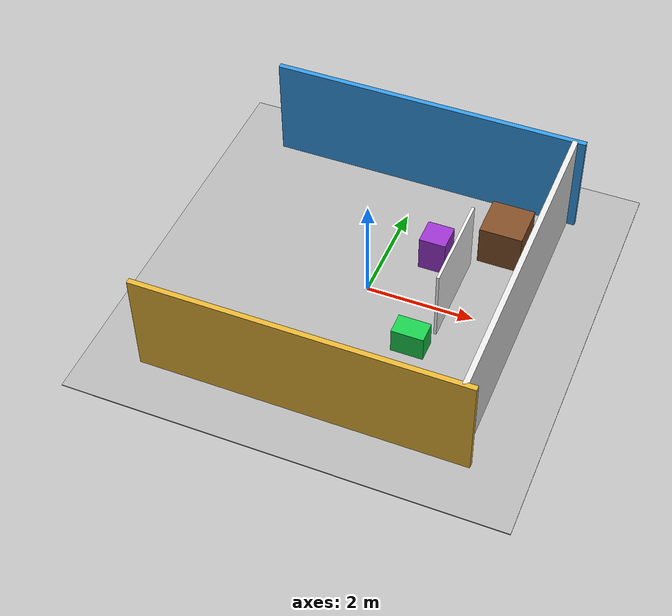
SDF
<?xml version="1.0" ?>
<sdf version="1.7">
  <world name="simple_arm_test_world">

    <gravity>0 0 -9.8</gravity>

    <include>
      <uri>model://sun</uri>
    </include>

    <!-- Floor -->
    <model name="floor_box">
      <static>true</static>
      <pose>0 0 -0.01 0 0 0</pose>
      <link name="link">
        <collision name="collision">
          <geometry>
            <box>
              <size>8 8 0.02</size>
            </box>
          </geometry>
        </collision>
        <visual name="visual">
          <geometry>
            <box>
              <size>8 8 0.02</size>
            </box>
          </geometry>
          <material>
            <ambient>0.7 0.7 0.7 1</ambient>
            <diffuse>0.7 0.7 0.7 1</diffuse>
          </material>
        </visual>
      </link>
    </model>

    <!-- Back wall -->
    <model name="back_wall">
      <static>true</static>
      <pose>2.8 0 1.0 0 0 0</pose>
      <link name="link">
        <collision name="collision">
          <geometry>
            <box>
              <size>0.1 6.0 2.0</size>
            </box>
          </geometry>
        </collision>
        <visual name="visual">
          <geometry>
            <box>
              <size>0.1 6.0 2.0</size>
            </box>
          </geometry>
          <material>
            <ambient>0.9 0.9 0.9 1</ambient>
            <diffuse>0.9 0.9 0.9 1</diffuse>
          </material>
        </visual>
      </link>
    </model>

    <!-- Left wall -->
    <model name="left_wall">
      <static>true</static>
      <pose>0 3.0 1.0 0 0 0</pose>
      <link name="link">
        <collision name="collision">
          <geometry>
            <box>
              <size>6.0 0.1 2.0</size>
            </box>
          </geometry>
        </collision>
        <visual name="visual">
          <geometry>
            <box>
              <size>6.0 0.1 2.0</size>
            </box>
          </geometry>
          <material>
            <ambient>0.2 0.6 0.9 1</ambient>
            <diffuse>0.2 0.6 0.9 1</diffuse>
          </material>
        </visual>
      </link>
    </model>

    <!-- Right wall -->
    <model name="right_wall">
      <static>true</static>
      <pose>0 -3.0 1.0 0 0 0</pose>
      <link name="link">
        <collision name="collision">
          <geometry>
            <box>
              <size>6.0 0.1 2.0</size>
            </box>
          </geometry>
        </collision>
        <visual name="visual">
          <geometry>
            <box>
              <size>6.0 0.1 2.0</size>
            </box>
          </geometry>
          <material>
            <ambient>0.9 0.7 0.2 1</ambient>
            <diffuse>0.9 0.7 0.2 1</diffuse>
          </material>
        </visual>
      </link>
    </model>

    <!-- Front white panel: useful for uniform-image detection -->
    <model name="white_panel">
      <static>true</static>
      <pose>1.6 0 1.1 0 0 0</pose>
      <link name="link">
        <collision name="collision">
          <geometry>
            <box>
              <size>0.05 1.8 1.4</size>
            </box>
          </geometry>
        </collision>
        <visual name="visual">
          <geometry>
            <box>
              <size>0.05 1.8 1.4</size>
            </box>
          </geometry>
          <material>
            <ambient>1 1 1 1</ambient>
            <diffuse>1 1 1 1</diffuse>
            <specular>0.8 0.8 0.8 1</specular>
          </material>
        </visual>
      </link>
    </model>

    <!-- Colored obstacle 1 -->
    <model name="purple_box">
      <static>true</static>
      <pose>0.9 1.1 0.35 0 0 0</pose>
      <link name="link">
        <collision name="collision">
          <geometry>
            <box>
              <size>0.5 0.5 0.7</size>
            </box>
          </geometry>
        </collision>
        <visual name="visual">
          <geometry>
            <box>
              <size>0.5 0.5 0.7</size>
            </box>
          </geometry>
          <material>
            <ambient>0.6 0.2 0.8 1</ambient>
            <diffuse>0.6 0.2 0.8 1</diffuse>
          </material>
        </visual>
      </link>
    </model>

    <!-- Colored obstacle 2 -->
    <model name="green_box">
      <static>true</static>
      <pose>1.2 -1.0 0.25 0 0 0</pose>
      <link name="link">
        <collision name="collision">
          <geometry>
            <box>
              <size>0.6 0.4 0.5</size>
            </box>
          </geometry>
        </collision>
        <visual name="visual">
          <geometry>
            <box>
              <size>0.6 0.4 0.5</size>
            </box>
          </geometry>
          <material>
            <ambient>0.1 0.8 0.3 1</ambient>
            <diffuse>0.1 0.8 0.3 1</diffuse>
          </material>
        </visual>
      </link>
    </model>

    <!-- Small table-like object -->
    <model name="table_block">
      <static>true</static>
      <pose>2.0 1.8 0.4 0 0 0</pose>
      <link name="link">
        <collision name="collision">
          <geometry>
            <box>
              <size>0.8 0.8 0.8</size>
            </box>
          </geometry>
        </collision>
        <visual name="visual">
          <geometry>
            <box>
              <size>0.8 0.8 0.8</size>
            </box>
          </geometry>
          <material>
            <ambient>0.5 0.3 0.15 1</ambient>
            <diffuse>0.5 0.3 0.15 1</diffuse>
          </material>
        </visual>
      </link>
    </model>

  </world>
</sdf>
